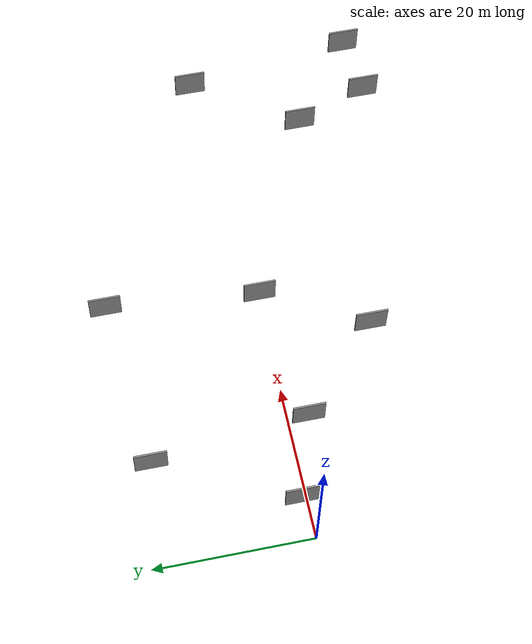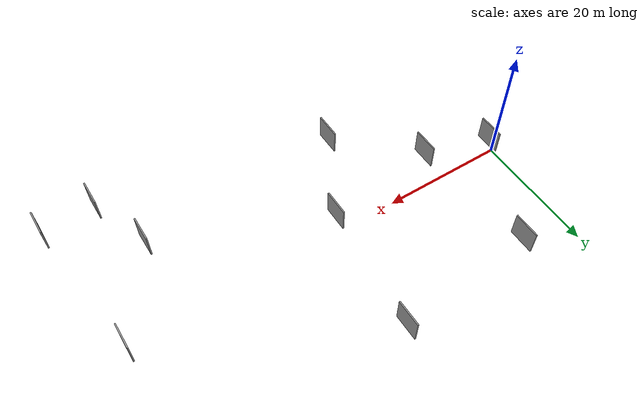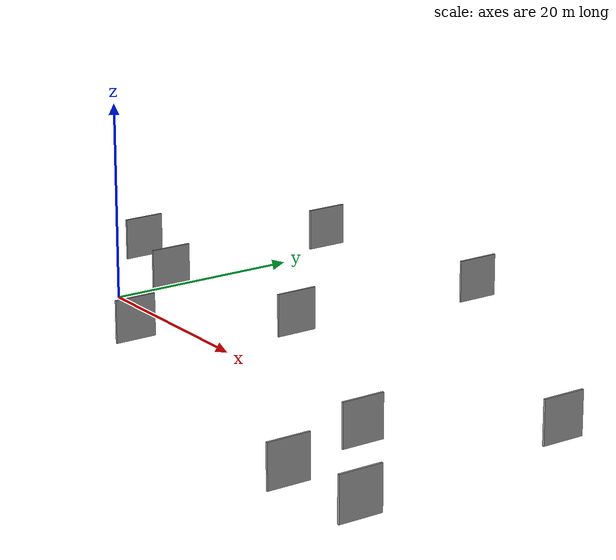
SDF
<sdf version="1.6">
 <world name="default">
  <scene>
   <sky><clouds><speed>12</speed></clouds></sky>
   <ambient>0.4 0.4 0.4 1</ambient>
   <background>0.7 0.7 0.7 1</background>
   <shadows>1</shadows>
  </scene>
  <gravity>0 0 -9.8066</gravity>
  <magnetic_field>6e-06 2.3e-05 -4.2e-05</magnetic_field>
  <physics default="0" name="default_physics" type="ode">
   <ode>
    <solver>
     <type>quick</type>
     <iters>10</iters>
     <sor>1.0</sor>
     <use_dynamic_moi_rescaling>0</use_dynamic_moi_rescaling>
    </solver>
    <constraints>
     <cfm>0</cfm>
     <erp>0.2</erp>
     <contact_max_correcting_vel>100</contact_max_correcting_vel>
     <contact_surface_layer>0.001</contact_surface_layer>
    </constraints>
   </ode>
   <max_step_size>0.004</max_step_size>
   <real_time_factor>1</real_time_factor>
   <real_time_update_rate>250</real_time_update_rate>
  </physics>
  <light name="sun" type="directional">
   <pose>0 0 10 0 0 0</pose>
   <diffuse>0.8 0.8 0.8 1</diffuse>
   <specular>0.2 0.2 0.2 1</specular>
   <attenuation>
    <range>1000</range>
    <constant>0.9</constant>
    <linear>0.01</linear>
    <quadratic>0.001</quadratic>
   </attenuation>
   <direction>-0.5 0.1 -0.9</direction>
  </light>
  <model name="grey_wall_1">
   <static>1</static>
   <pose>23.9595 -12.2165 5.0 0.000000 0.000000 1.570796</pose>
   <link name="link">
    <pose>0 0 2.00 0 0 0</pose>
    <collision name="collision"><geometry><box><size>4.00 0.2 4.00</size></box></geometry></collision>
    <visual name="visual">
     <cast_shadows>0</cast_shadows>
     <geometry><box><size>4.00 0.2 4.00</size></box></geometry>
     <material>
      <script>
       <uri>model://grey_wall/materials/scripts</uri>
       <uri>model://grey_wall/materials/textures</uri>
       <name>vrc/grey_wall</name>
      </script>
     </material>
    </visual>
   </link>
  </model>
  <model name="grey_wall_2">
   <static>1</static>
   <pose>10.8239 17.8425 5.0 0.000000 0.000000 1.570796</pose>
   <link name="link">
    <pose>0 0 2.00 0 0 0</pose>
    <collision name="collision"><geometry><box><size>4.00 0.2 4.00</size></box></geometry></collision>
    <visual name="visual">
     <cast_shadows>0</cast_shadows>
     <geometry><box><size>4.00 0.2 4.00</size></box></geometry>
     <material>
      <script>
       <uri>model://grey_wall/materials/scripts</uri>
       <uri>model://grey_wall/materials/textures</uri>
       <name>vrc/grey_wall</name>
      </script>
     </material>
    </visual>
   </link>
  </model>
  <model name="grey_wall_3">
   <static>1</static>
   <pose>32.4872 19.8786 5.0 0.000000 0.000000 1.570796</pose>
   <link name="link">
    <pose>0 0 2.00 0 0 0</pose>
    <collision name="collision"><geometry><box><size>4.00 0.2 4.00</size></box></geometry></collision>
    <visual name="visual">
     <cast_shadows>0</cast_shadows>
     <geometry><box><size>4.00 0.2 4.00</size></box></geometry>
     <material>
      <script>
       <uri>model://grey_wall/materials/scripts</uri>
       <uri>model://grey_wall/materials/textures</uri>
       <name>vrc/grey_wall</name>
      </script>
     </material>
    </visual>
   </link>
  </model>
  <model name="grey_wall_4">
   <static>1</static>
   <pose>30.7872 0.5075 5.0 0.000000 0.000000 1.570796</pose>
   <link name="link">
    <pose>0 0 2.00 0 0 0</pose>
    <collision name="collision"><geometry><box><size>4.00 0.2 4.00</size></box></geometry></collision>
    <visual name="visual">
     <cast_shadows>0</cast_shadows>
     <geometry><box><size>4.00 0.2 4.00</size></box></geometry>
     <material>
      <script>
       <uri>model://grey_wall/materials/scripts</uri>
       <uri>model://grey_wall/materials/textures</uri>
       <name>vrc/grey_wall</name>
      </script>
     </material>
    </visual>
   </link>
  </model>
  <model name="grey_wall_5">
   <static>1</static>
   <pose>13.1751 -1.8478 5.0 0.000000 0.000000 1.570796</pose>
   <link name="link">
    <pose>0 0 2.00 0 0 0</pose>
    <collision name="collision"><geometry><box><size>4.00 0.2 4.00</size></box></geometry></collision>
    <visual name="visual">
     <cast_shadows>0</cast_shadows>
     <geometry><box><size>4.00 0.2 4.00</size></box></geometry>
     <material>
      <script>
       <uri>model://grey_wall/materials/scripts</uri>
       <uri>model://grey_wall/materials/textures</uri>
       <name>vrc/grey_wall</name>
      </script>
     </material>
    </visual>
   </link>
  </model>
  <model name="grey_wall_6">
   <static>1</static>
   <pose>67.5064 -19.0091 5.0 0.000000 0.000000 1.570796</pose>
   <link name="link">
    <pose>0 0 2.00 0 0 0</pose>
    <collision name="collision"><geometry><box><size>4.00 0.2 4.00</size></box></geometry></collision>
    <visual name="visual">
     <cast_shadows>0</cast_shadows>
     <geometry><box><size>4.00 0.2 4.00</size></box></geometry>
     <material>
      <script>
       <uri>model://grey_wall/materials/scripts</uri>
       <uri>model://grey_wall/materials/textures</uri>
       <name>vrc/grey_wall</name>
      </script>
     </material>
    </visual>
   </link>
  </model>
  <model name="grey_wall_7">
   <static>1</static>
   <pose>3.0769 1.2649 5.0 0.000000 0.000000 1.570796</pose>
   <link name="link">
    <pose>0 0 2.00 0 0 0</pose>
    <collision name="collision"><geometry><box><size>4.00 0.2 4.00</size></box></geometry></collision>
    <visual name="visual">
     <cast_shadows>0</cast_shadows>
     <geometry><box><size>4.00 0.2 4.00</size></box></geometry>
     <material>
      <script>
       <uri>model://grey_wall/materials/scripts</uri>
       <uri>model://grey_wall/materials/textures</uri>
       <name>vrc/grey_wall</name>
      </script>
     </material>
    </visual>
   </link>
  </model>
  <model name="grey_wall_8">
   <static>1</static>
   <pose>55.7715 -10.2720 5.0 0.000000 0.000000 1.570796</pose>
   <link name="link">
    <pose>0 0 2.00 0 0 0</pose>
    <collision name="collision"><geometry><box><size>4.00 0.2 4.00</size></box></geometry></collision>
    <visual name="visual">
     <cast_shadows>0</cast_shadows>
     <geometry><box><size>4.00 0.2 4.00</size></box></geometry>
     <material>
      <script>
       <uri>model://grey_wall/materials/scripts</uri>
       <uri>model://grey_wall/materials/textures</uri>
       <name>vrc/grey_wall</name>
      </script>
     </material>
    </visual>
   </link>
  </model>
  <model name="grey_wall_9">
   <static>1</static>
   <pose>64.4193 3.1416 5.0 0.000000 0.000000 1.570796</pose>
   <link name="link">
    <pose>0 0 2.00 0 0 0</pose>
    <collision name="collision"><geometry><box><size>4.00 0.2 4.00</size></box></geometry></collision>
    <visual name="visual">
     <cast_shadows>0</cast_shadows>
     <geometry><box><size>4.00 0.2 4.00</size></box></geometry>
     <material>
      <script>
       <uri>model://grey_wall/materials/scripts</uri>
       <uri>model://grey_wall/materials/textures</uri>
       <name>vrc/grey_wall</name>
      </script>
     </material>
    </visual>
   </link>
  </model>
  <model name="grey_wall_10">
   <static>1</static>
   <pose>59.3243 -19.8249 5.0 0.000000 0.000000 1.570796</pose>
   <link name="link">
    <pose>0 0 2.00 0 0 0</pose>
    <collision name="collision"><geometry><box><size>4.00 0.2 4.00</size></box></geometry></collision>
    <visual name="visual">
     <cast_shadows>0</cast_shadows>
     <geometry><box><size>4.00 0.2 4.00</size></box></geometry>
     <material>
      <script>
       <uri>model://grey_wall/materials/scripts</uri>
       <uri>model://grey_wall/materials/textures</uri>
       <name>vrc/grey_wall</name>
      </script>
     </material>
    </visual>
   </link>
  </model>
 </world>
</sdf>
